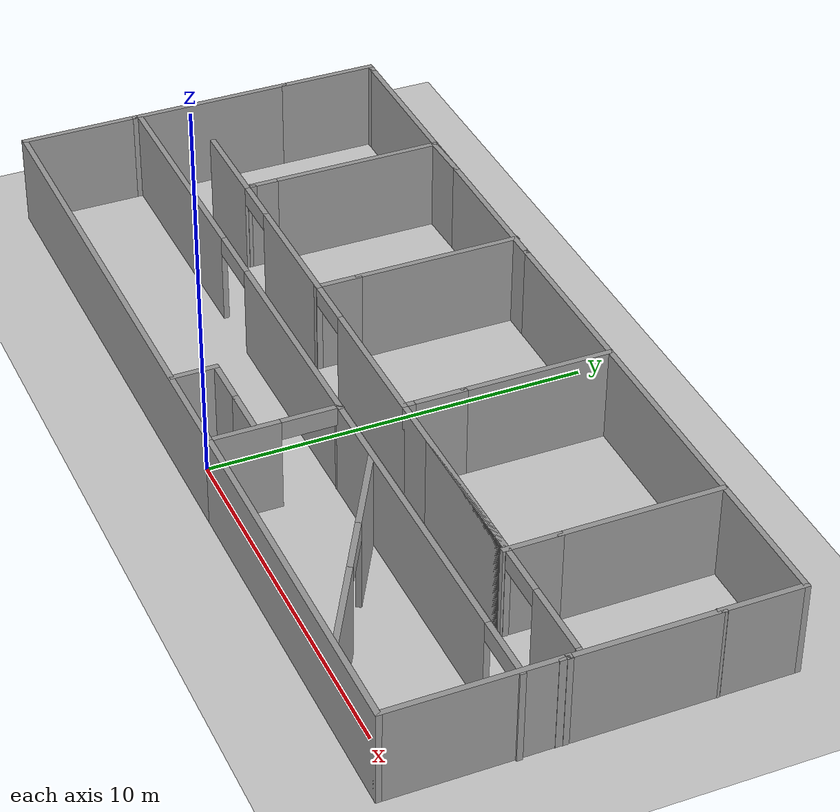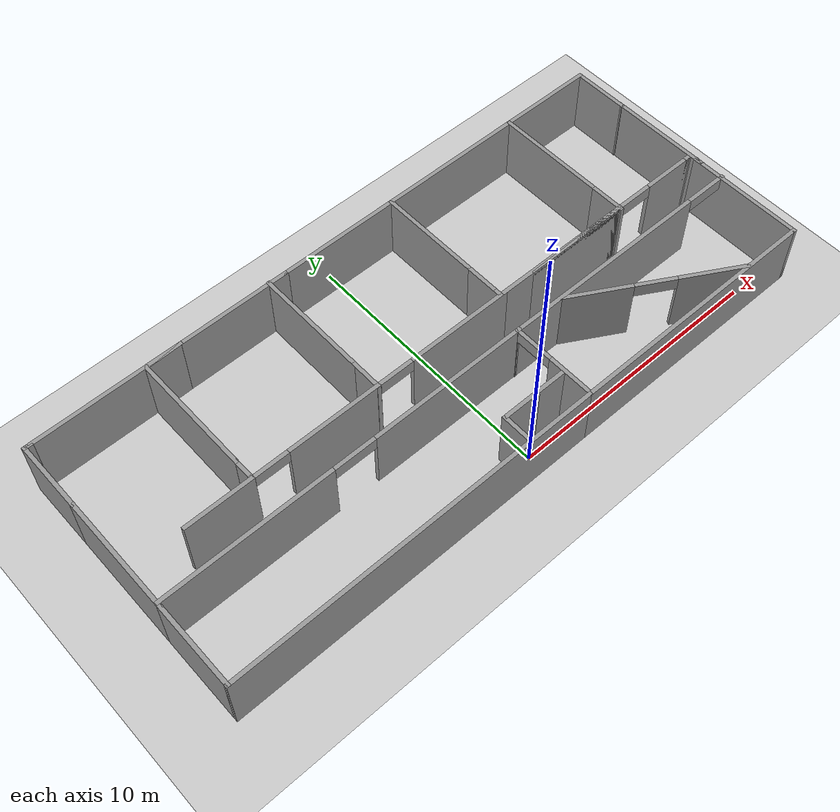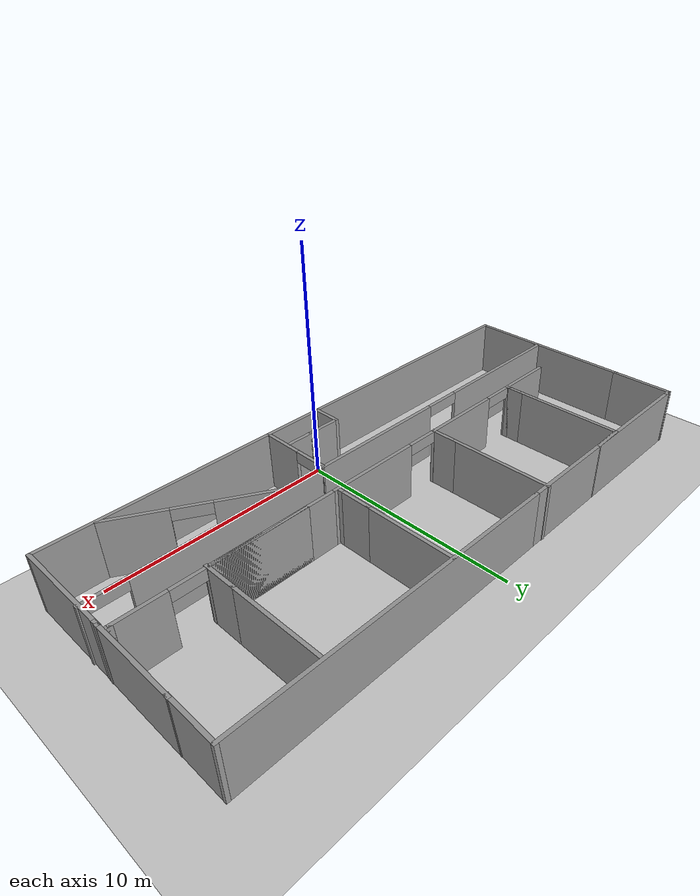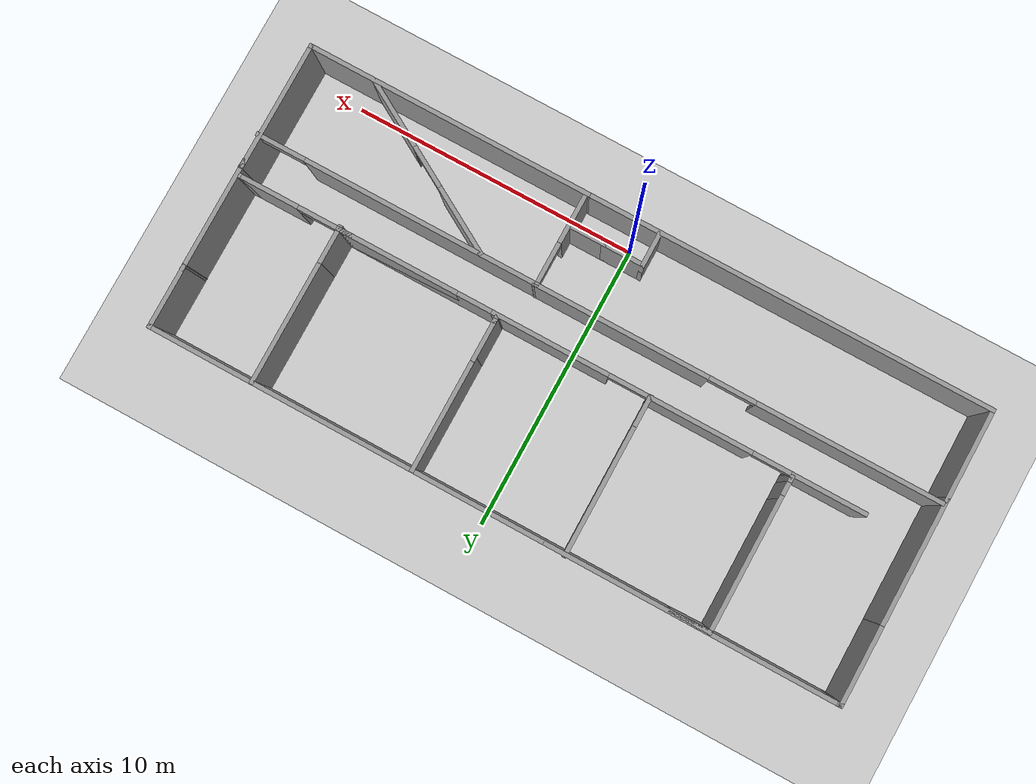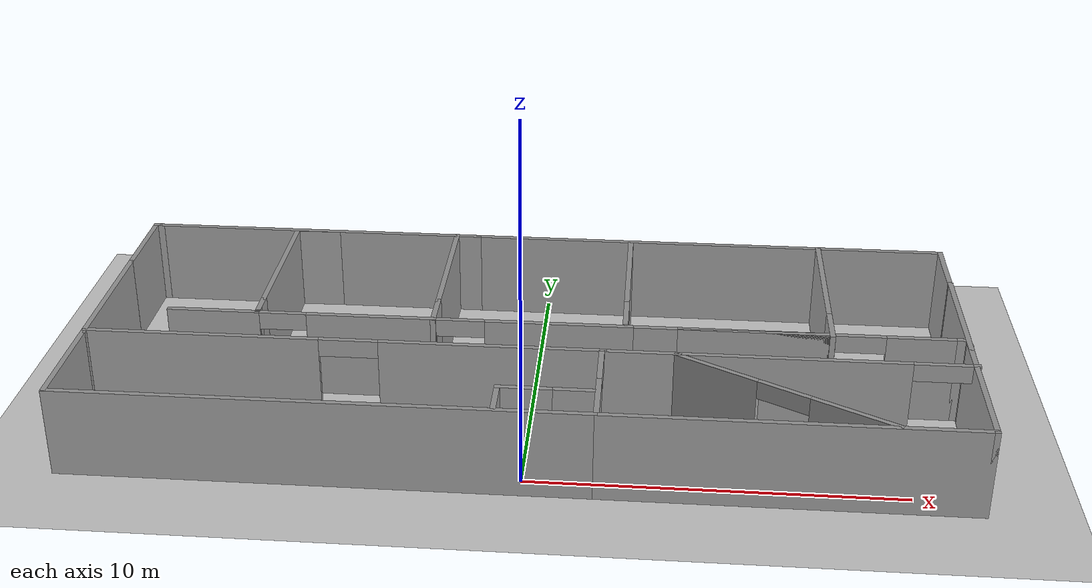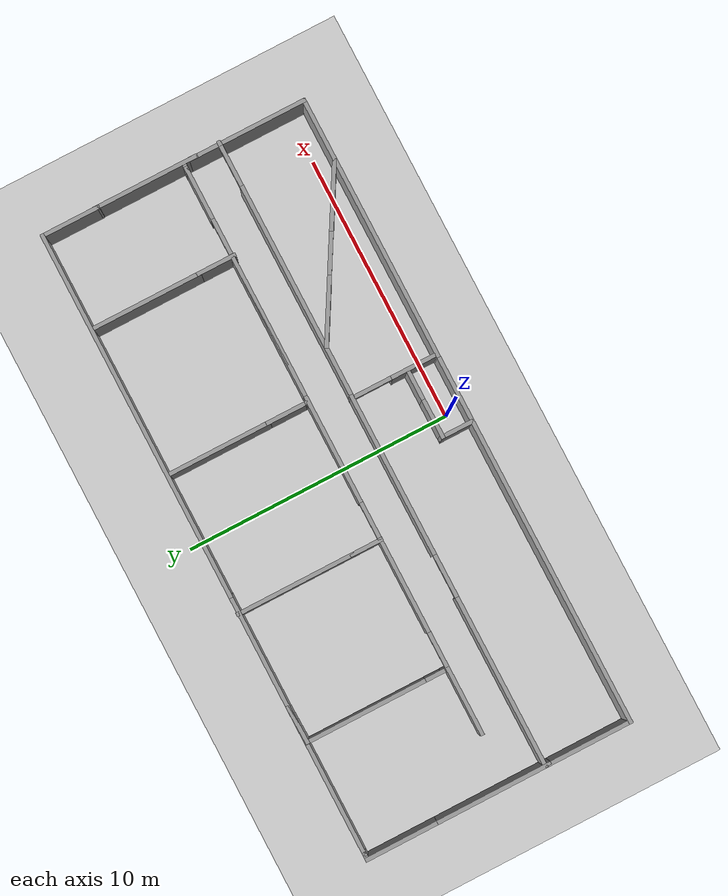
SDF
<sdf version="1.7">
 <world name="default">
  <light name="sun" type="directional">
   <pose>0 0 10 0 -0 0</pose>
   <diffuse>0.8 0.8 0.8 1</diffuse>
   <specular>0.2 0.2 0.2 1</specular>
   <attenuation>
    <range>1000</range>
    <constant>0.9</constant>
    <linear>0.01</linear>
    <quadratic>0.001</quadratic>
   </attenuation>
   <direction>-0.5 0.1 -0.9</direction>
   <spot><inner_angle>0</inner_angle><outer_angle>0</outer_angle><falloff>0</falloff></spot>
  </light>
  <model name="ground_plane">
   <static>1</static>
   <link name="link">
    <collision name="collision">
     <geometry><plane><normal>0 0 1</normal><size>100 100</size></plane></geometry>
     <surface><friction><ode><mu>100</mu><mu2>50</mu2></ode></friction></surface>
    </collision>
    <visual name="visual">
     <cast_shadows>0</cast_shadows>
     <geometry><plane><normal>0 0 1</normal><size>100 100</size></plane></geometry>
     <material>
      <script><uri>file://media/materials/scripts/gazebo.material</uri><name>Gazebo/Grey</name></script>
     </material>
    </visual>
   </link>
  </model>
  <gravity>0 0 -9.8</gravity>
  <magnetic_field>6e-06 2.3e-05 -4.2e-05</magnetic_field>
  <atmosphere type="adiabatic"/>
  <physics type="ode">
   <max_step_size>0.001</max_step_size>
   <real_time_factor>1</real_time_factor>
   <real_time_update_rate>1000</real_time_update_rate>
  </physics>
  <scene><ambient>0.4 0.4 0.4 1</ambient><background>0.7 0.7 0.7 1</background><shadows>1</shadows></scene>
  <audio><device>default</device></audio>
  <spherical_coordinates>
   <surface_model>EARTH_WGS84</surface_model>
   <latitude_deg>0</latitude_deg>
   <longitude_deg>0</longitude_deg>
   <elevation>0</elevation>
   <heading_deg>0</heading_deg>
  </spherical_coordinates>
  <model name="factoty1">
   <pose>-0.195029 4.45497 0 0 -0 0</pose>
   <link name="Wall_15">
    <collision name="Wall_15_Collision">
     <geometry><box><size>1.25 0.15 2.5</size></box></geometry>
     <pose>0 0 1.25 0 -0 0</pose>
    </collision>
    <visual name="Wall_15_Visual">
     <pose>0 0 1.25 0 -0 0</pose>
     <geometry><box><size>1.25 0.15 2.5</size></box></geometry>
     <material>
      <script><uri>file://media/materials/scripts/gazebo.material</uri><name>Gazebo/Grey</name></script>
      <ambient>1 1 1 1</ambient>
     </material>
     <meta><layer>0</layer></meta>
    </visual>
    <pose>-0.464971 -4.44497 0 0 -0 1.5708</pose>
   </link>
   <link name="Wall_18">
    <collision name="Wall_18_Collision">
     <geometry><box><size>1.5 0.15 2.5</size></box></geometry>
     <pose>0 0 1.25 0 -0 0</pose>
    </collision>
    <visual name="Wall_18_Visual">
     <pose>0 0 1.25 0 -0 0</pose>
     <geometry><box><size>1.5 0.15 2.5</size></box></geometry>
     <material>
      <script><uri>file://media/materials/scripts/gazebo.material</uri><name>Gazebo/Grey</name></script>
      <ambient>1 1 1 1</ambient>
     </material>
     <meta><layer>0</layer></meta>
    </visual>
    <pose>0.210029 -3.89497 0 0 -0 0</pose>
   </link>
   <link name="Wall_19">
    <pose>1.43503 -3.89497 0 0 -0 0</pose>
    <visual name="Wall_19_Visual_0">
     <pose>0 0 1.25 0 -0 0</pose>
     <geometry><box><size>1.25 0.15 2.5</size></box></geometry>
     <material>
      <script><uri>file://media/materials/scripts/gazebo.material</uri><name>Gazebo/Grey</name></script>
      <ambient>1 1 1 1</ambient>
     </material>
     <meta><layer>0</layer></meta>
    </visual>
    <collision name="Wall_19_Collision_0">
     <geometry><box><size>1.25 0.15 2.5</size></box></geometry>
     <pose>0 0 1.25 0 -0 0</pose>
    </collision>
    <visual name="Wall_19_Visual_1">
     <pose>0.6225 0 1.25 0 -0 0</pose>
     <geometry><box><size>0.005 0.15 2.5</size></box></geometry>
     <material>
      <script><uri>file://media/materials/scripts/gazebo.material</uri><name>Gazebo/Grey</name></script>
      <ambient>1 1 1 1</ambient>
     </material>
     <meta><layer>0</layer></meta>
    </visual>
    <collision name="Wall_19_Collision_1">
     <geometry><box><size>0.005 0.15 2.5</size></box></geometry>
     <pose>0.6225 0 1.25 0 -0 0</pose>
    </collision>
   </link>
   <link name="Wall_25">
    <pose>-4.88997 -1.78997 0 0 -0 0.000708</pose>
    <visual name="Wall_25_Visual_0">
     <pose>-3.88499 0 1.25 0 -0 0</pose>
     <geometry><box><size>6.51002 0.15 2.5</size></box></geometry>
     <material>
      <script><uri>file://media/materials/scripts/gazebo.material</uri><name>Gazebo/Grey</name></script>
      <ambient>1 1 1 1</ambient>
     </material>
     <meta><layer>0</layer></meta>
    </visual>
    <collision name="Wall_25_Collision_0">
     <geometry><box><size>6.51002 0.15 2.5</size></box></geometry>
     <pose>-3.88499 0 1.25 0 -0 0</pose>
    </collision>
    <visual name="Wall_25_Visual_1">
     <pose>4.06501 0 1.25 0 -0 0</pose>
     <geometry><box><size>6.14999 0.15 2.5</size></box></geometry>
     <material>
      <script><uri>file://media/materials/scripts/gazebo.material</uri><name>Gazebo/Grey</name></script>
      <ambient>1 1 1 1</ambient>
     </material>
     <meta><layer>0</layer></meta>
    </visual>
    <collision name="Wall_25_Collision_1">
     <geometry><box><size>6.14999 0.15 2.5</size></box></geometry>
     <pose>4.06501 0 1.25 0 -0 0</pose>
    </collision>
    <visual name="Wall_25_Visual_2">
     <pose>0.180014 0 2.25 0 -0 0</pose>
     <geometry><box><size>1.61999 0.15 0.5</size></box></geometry>
     <material>
      <script><uri>file://media/materials/scripts/gazebo.material</uri><name>Gazebo/Grey</name></script>
      <ambient>1 1 1 1</ambient>
     </material>
     <meta><layer>0</layer></meta>
    </visual>
    <collision name="Wall_25_Collision_2">
     <geometry><box><size>1.61999 0.15 0.5</size></box></geometry>
     <pose>0.180014 0 2.25 0 -0 0</pose>
    </collision>
   </link>
   <link name="Wall_27">
    <collision name="Wall_27_Collision">
     <geometry><box><size>14.2 0.15 2.5</size></box></geometry>
     <pose>0 0 1.25 0 -0 0</pose>
    </collision>
    <visual name="Wall_27_Visual">
     <pose>0 0 1.25 0 -0 0</pose>
     <geometry><box><size>14.2 0.15 2.5</size></box></geometry>
     <material>
      <script><uri>file://media/materials/scripts/gazebo.material</uri><name>Gazebo/Grey</name></script>
      <ambient>1 1 1 1</ambient>
     </material>
     <meta><layer>0</layer></meta>
    </visual>
    <pose>-4.94997 -5.03997 0 0 -0 0.000712</pose>
   </link>
   <link name="Wall_30">
    <collision name="Wall_30_Collision">
     <geometry><box><size>3.25 0.15 2.5</size></box></geometry>
     <pose>0 0 1.25 0 -0 0</pose>
    </collision>
    <visual name="Wall_30_Visual">
     <pose>0 0 1.25 0 -0 0</pose>
     <geometry><box><size>3.25 0.15 2.5</size></box></geometry>
     <material>
      <script><uri>file://media/materials/scripts/gazebo.material</uri><name>Gazebo/Grey</name></script>
      <ambient>1 1 1 1</ambient>
     </material>
     <meta><layer>0</layer></meta>
    </visual>
    <pose>-11.975 -3.48497 0 0 -0 1.5708</pose>
   </link>
   <link name="Wall_32">
    <collision name="Wall_32_Collision">
     <geometry><box><size>10 0.15 2.5</size></box></geometry>
     <pose>0 0 1.25 0 -0 0</pose>
    </collision>
    <visual name="Wall_32_Visual">
     <pose>0 0 1.25 0 -0 0</pose>
     <geometry><box><size>10 0.15 2.5</size></box></geometry>
     <material>
      <script><uri>file://media/materials/scripts/gazebo.material</uri><name>Gazebo/Grey</name></script>
      <ambient>1 1 1 1</ambient>
     </material>
     <meta><layer>0</layer></meta>
    </visual>
    <pose>7.00003 -5.03497 0 0 -0 0</pose>
   </link>
   <link name="Wall_33">
    <collision name="Wall_33_Collision">
     <geometry><box><size>4.5 0.15 2.5</size></box></geometry>
     <pose>0 0 1.25 0 -0 0</pose>
    </collision>
    <visual name="Wall_33_Visual">
     <pose>0 0 1.25 0 -0 0</pose>
     <geometry><box><size>4.5 0.15 2.5</size></box></geometry>
     <material>
      <script><uri>file://media/materials/scripts/gazebo.material</uri><name>Gazebo/Grey</name></script>
      <ambient>1 1 1 1</ambient>
     </material>
     <meta><layer>0</layer></meta>
    </visual>
    <pose>11.925 -2.85997 0 0 -0 1.5708</pose>
   </link>
   <link name="Wall_34">
    <collision name="Wall_34_Collision">
     <geometry><box><size>0.16 0.15 2.5</size></box></geometry>
     <pose>0 0 1.25 0 -0 0</pose>
    </collision>
    <visual name="Wall_34_Visual">
     <pose>0 0 1.25 0 -0 0</pose>
     <geometry><box><size>0.16 0.15 2.5</size></box></geometry>
     <material>
      <script><uri>file://media/materials/scripts/gazebo.material</uri><name>Gazebo/Grey</name></script>
      <ambient>1 1 1 1</ambient>
     </material>
     <meta><layer>0</layer></meta>
    </visual>
    <pose>11.93 -0.684973 0 0 -0 0</pose>
   </link>
   <link name="Wall_35">
    <collision name="Wall_35_Collision">
     <geometry><box><size>0.16 0.15 2.5</size></box></geometry>
     <pose>0 0 1.25 0 -0 0</pose>
    </collision>
    <visual name="Wall_35_Visual">
     <pose>0 0 1.25 0 -0 0</pose>
     <geometry><box><size>0.16 0.15 2.5</size></box></geometry>
     <material>
      <script><uri>file://media/materials/scripts/gazebo.material</uri><name>Gazebo/Grey</name></script>
      <ambient>1 1 1 1</ambient>
     </material>
     <meta><layer>0</layer></meta>
    </visual>
    <pose>11.94 -0.684973 0 0 -0 0</pose>
   </link>
   <link name="Wall_37">
    <collision name="Wall_37_Collision">
     <geometry><box><size>0.33 0.15 2.5</size></box></geometry>
     <pose>0 0 1.25 0 -0 0</pose>
    </collision>
    <visual name="Wall_37_Visual">
     <pose>0 0 1.25 0 -0 0</pose>
     <geometry><box><size>0.33 0.15 2.5</size></box></geometry>
     <material>
      <script><uri>file://media/materials/scripts/gazebo.material</uri><name>Gazebo/Grey</name></script>
      <ambient>1 1 1 1</ambient>
     </material>
     <meta><layer>0</layer></meta>
    </visual>
    <pose>11.935 -0.774973 0 0 -0 -1.5708</pose>
   </link>
   <link name="Wall_38">
    <collision name="Wall_38_Collision">
     <geometry><box><size>4 0.15 2.5</size></box></geometry>
     <pose>0 0 1.25 0 -0 0</pose>
    </collision>
    <visual name="Wall_38_Visual">
     <pose>0 0 1.25 0 -0 0</pose>
     <geometry><box><size>4 0.15 2.5</size></box></geometry>
     <material>
      <script><uri>file://media/materials/scripts/gazebo.material</uri><name>Gazebo/Grey</name></script>
      <ambient>1 1 1 1</ambient>
     </material>
     <meta><layer>0</layer></meta>
    </visual>
    <pose>11.935 1.06003 0 0 -0 1.5708</pose>
   </link>
   <link name="Wall_40">
    <collision name="Wall_40_Collision">
     <geometry><box><size>0.220711 0.15 2.5</size></box></geometry>
     <pose>0 0 1.25 0 -0 0</pose>
    </collision>
    <visual name="Wall_40_Visual">
     <pose>0 0 1.25 0 -0 0</pose>
     <geometry><box><size>0.220711 0.15 2.5</size></box></geometry>
     <material>
      <script><uri>file://media/materials/scripts/gazebo.material</uri><name>Gazebo/Grey</name></script>
      <ambient>1 1 1 1</ambient>
     </material>
     <meta><layer>0</layer></meta>
    </visual>
    <pose>11.93 2.95003 0 0 -0 -1.71269</pose>
   </link>
   <link name="Wall_41">
    <collision name="Wall_41_Collision">
     <geometry><box><size>2.25 0.15 2.5</size></box></geometry>
     <pose>0 0 1.25 0 -0 0</pose>
    </collision>
    <visual name="Wall_41_Visual">
     <pose>0 0 1.25 0 -0 0</pose>
     <geometry><box><size>2.25 0.15 2.5</size></box></geometry>
     <material>
      <script><uri>file://media/materials/scripts/gazebo.material</uri><name>Gazebo/Grey</name></script>
      <ambient>1 1 1 1</ambient>
     </material>
     <meta><layer>0</layer></meta>
    </visual>
    <pose>11.925 3.96503 0 0 -0 1.5708</pose>
   </link>
   <link name="Wall_42">
    <collision name="Wall_42_Collision">
     <geometry><box><size>14 0.15 2.5</size></box></geometry>
     <pose>0 0 1.25 0 -0 0</pose>
    </collision>
    <visual name="Wall_42_Visual">
     <pose>0 0 1.25 0 -0 0</pose>
     <geometry><box><size>14 0.15 2.5</size></box></geometry>
     <material>
      <script><uri>file://media/materials/scripts/gazebo.material</uri><name>Gazebo/Grey</name></script>
      <ambient>1 1 1 1</ambient>
     </material>
     <meta><layer>0</layer></meta>
    </visual>
    <pose>5.00003 5.01503 0 0 -0 3.14159</pose>
   </link>
   <link name="Wall_44">
    <collision name="Wall_44_Collision">
     <geometry><box><size>10 0.15 2.5</size></box></geometry>
     <pose>0 0 1.25 0 -0 0</pose>
    </collision>
    <visual name="Wall_44_Visual">
     <pose>0 0 1.25 0 -0 0</pose>
     <geometry><box><size>10 0.15 2.5</size></box></geometry>
     <material>
      <script><uri>file://media/materials/scripts/gazebo.material</uri><name>Gazebo/Grey</name></script>
      <ambient>1 1 1 1</ambient>
     </material>
     <meta><layer>0</layer></meta>
    </visual>
    <pose>-6.84997 5.01503 0 0 -0 3.14159</pose>
   </link>
   <link name="Wall_46">
    <collision name="Wall_46_Collision">
     <geometry><box><size>4.5 0.15 2.5</size></box></geometry>
     <pose>0 0 1.25 0 -0 0</pose>
    </collision>
    <visual name="Wall_46_Visual">
     <pose>0 0 1.25 0 -0 0</pose>
     <geometry><box><size>4.5 0.15 2.5</size></box></geometry>
     <material>
      <script><uri>file://media/materials/scripts/gazebo.material</uri><name>Gazebo/Grey</name></script>
      <ambient>1 1 1 1</ambient>
     </material>
     <meta><layer>0</layer></meta>
    </visual>
    <pose>-11.975 0.240027 0 0 -0 1.5708</pose>
   </link>
   <link name="Wall_48">
    <collision name="Wall_48_Collision">
     <geometry><box><size>2.75 0.15 2.5</size></box></geometry>
     <pose>0 0 1.25 0 -0 0</pose>
    </collision>
    <visual name="Wall_48_Visual">
     <pose>0 0 1.25 0 -0 0</pose>
     <geometry><box><size>2.75 0.15 2.5</size></box></geometry>
     <material>
      <script><uri>file://media/materials/scripts/gazebo.material</uri><name>Gazebo/Grey</name></script>
      <ambient>1 1 1 1</ambient>
     </material>
     <meta><layer>0</layer></meta>
    </visual>
    <pose>-11.975 3.71503 0 0 -0 1.5708</pose>
   </link>
   <link name="Wall_49">
    <collision name="Wall_49_Collision">
     <geometry><box><size>0.35 0.15 2.5</size></box></geometry>
     <pose>0 0 1.25 0 -0 0</pose>
    </collision>
    <visual name="Wall_49_Visual">
     <pose>0 0 1.25 0 -0 0</pose>
     <geometry><box><size>0.35 0.15 2.5</size></box></geometry>
     <material>
      <script><uri>file://media/materials/scripts/gazebo.material</uri><name>Gazebo/Grey</name></script>
      <ambient>1 1 1 1</ambient>
     </material>
     <meta><layer>0</layer></meta>
    </visual>
    <pose>-11.875 5.01503 0 0 -0 0</pose>
   </link>
   <link name="Wall_51">
    <collision name="Wall_51_Collision">
     <geometry><box><size>0.20099 0.15 2.5</size></box></geometry>
     <pose>0 0 1.25 0 -0 0</pose>
    </collision>
    <visual name="Wall_51_Visual">
     <pose>0 0 1.25 0 -0 0</pose>
     <geometry><box><size>0.20099 0.15 2.5</size></box></geometry>
     <material>
      <script><uri>file://media/materials/scripts/gazebo.material</uri><name>Gazebo/Grey</name></script>
      <ambient>1 1 1 1</ambient>
     </material>
     <meta><layer>0</layer></meta>
    </visual>
    <pose>2.15003 -1.78997 0 0 -0 -2.9442</pose>
   </link>
   <link name="Wall_52">
    <pose>2.12503 -3.34497 0 0 -0 -1.5708</pose>
    <visual name="Wall_52_Visual_0">
     <pose>-1.565 0 1.25 0 -0 0</pose>
     <geometry><box><size>0.12 0.15 2.5</size></box></geometry>
     <material>
      <script><uri>file://media/materials/scripts/gazebo.material</uri><name>Gazebo/Grey</name></script>
      <ambient>1 1 1 1</ambient>
     </material>
     <meta><layer>0</layer></meta>
    </visual>
    <collision name="Wall_52_Collision_0">
     <geometry><box><size>0.12 0.15 2.5</size></box></geometry>
     <pose>-1.565 0 1.25 0 -0 0</pose>
    </collision>
    <visual name="Wall_52_Visual_1">
     <pose>0.775 0 1.25 0 -0 0</pose>
     <geometry><box><size>1.7 0.15 2.5</size></box></geometry>
     <material>
      <script><uri>file://media/materials/scripts/gazebo.material</uri><name>Gazebo/Grey</name></script>
      <ambient>1 1 1 1</ambient>
     </material>
     <meta><layer>0</layer></meta>
    </visual>
    <collision name="Wall_52_Collision_1">
     <geometry><box><size>1.7 0.15 2.5</size></box></geometry>
     <pose>0.775 0 1.25 0 -0 0</pose>
    </collision>
    <visual name="Wall_52_Visual_2">
     <pose>-0.79 0 2.25 0 -0 0</pose>
     <geometry><box><size>1.43 0.15 0.5</size></box></geometry>
     <material>
      <script><uri>file://media/materials/scripts/gazebo.material</uri><name>Gazebo/Grey</name></script>
      <ambient>1 1 1 1</ambient>
     </material>
     <meta><layer>0</layer></meta>
    </visual>
    <collision name="Wall_52_Collision_2">
     <geometry><box><size>1.43 0.15 0.5</size></box></geometry>
     <pose>-0.79 0 2.25 0 -0 0</pose>
    </collision>
   </link>
   <link name="Wall_54">
    <pose>-3.56997 -0.394973 0 0 -0 0</pose>
    <visual name="Wall_54_Visual_0">
     <pose>-5.195 0 1.25 0 -0 0</pose>
     <geometry><box><size>2.61 0.15 2.5</size></box></geometry>
     <material>
      <script><uri>file://media/materials/scripts/gazebo.material</uri><name>Gazebo/Grey</name></script>
      <ambient>1 1 1 1</ambient>
     </material>
     <meta><layer>0</layer></meta>
    </visual>
    <collision name="Wall_54_Collision_0">
     <geometry><box><size>2.61 0.15 2.5</size></box></geometry>
     <pose>-5.195 0 1.25 0 -0 0</pose>
    </collision>
    <visual name="Wall_54_Visual_1">
     <pose>-0.755 0 1.25 0 -0 0</pose>
     <geometry><box><size>3.63 0.15 2.5</size></box></geometry>
     <material>
      <script><uri>file://media/materials/scripts/gazebo.material</uri><name>Gazebo/Grey</name></script>
      <ambient>1 1 1 1</ambient>
     </material>
     <meta><layer>0</layer></meta>
    </visual>
    <collision name="Wall_54_Collision_1">
     <geometry><box><size>3.63 0.15 2.5</size></box></geometry>
     <pose>-0.755 0 1.25 0 -0 0</pose>
    </collision>
    <visual name="Wall_54_Visual_2">
     <pose>4.455 0 1.25 0 -0 0</pose>
     <geometry><box><size>4.09 0.15 2.5</size></box></geometry>
     <material>
      <script><uri>file://media/materials/scripts/gazebo.material</uri><name>Gazebo/Grey</name></script>
      <ambient>1 1 1 1</ambient>
     </material>
     <meta><layer>0</layer></meta>
    </visual>
    <collision name="Wall_54_Collision_2">
     <geometry><box><size>4.09 0.15 2.5</size></box></geometry>
     <pose>4.455 0 1.25 0 -0 0</pose>
    </collision>
    <visual name="Wall_54_Visual_3">
     <pose>-3.23 0 2.25 0 -0 0</pose>
     <geometry><box><size>1.32 0.15 0.5</size></box></geometry>
     <material>
      <script><uri>file://media/materials/scripts/gazebo.material</uri><name>Gazebo/Grey</name></script>
      <ambient>1 1 1 1</ambient>
     </material>
     <meta><layer>0</layer></meta>
    </visual>
    <collision name="Wall_54_Collision_3">
     <geometry><box><size>1.32 0.15 0.5</size></box></geometry>
     <pose>-3.23 0 2.25 0 -0 0</pose>
    </collision>
    <visual name="Wall_54_Visual_4">
     <pose>1.735 0 2.25 0 -0 0</pose>
     <geometry><box><size>1.35 0.15 0.5</size></box></geometry>
     <material>
      <script><uri>file://media/materials/scripts/gazebo.material</uri><name>Gazebo/Grey</name></script>
      <ambient>1 1 1 1</ambient>
     </material>
     <meta><layer>0</layer></meta>
    </visual>
    <collision name="Wall_54_Collision_4">
     <geometry><box><size>1.35 0.15 0.5</size></box></geometry>
     <pose>1.735 0 2.25 0 -0 0</pose>
    </collision>
   </link>
   <link name="Wall_56">
    <pose>7.28003 -0.394973 0 0 -0 0</pose>
    <visual name="Wall_56_Visual_0">
     <pose>-1.69 0 1.25 0 -0 0</pose>
     <geometry><box><size>5.62 0.15 2.5</size></box></geometry>
     <material>
      <script><uri>file://media/materials/scripts/gazebo.material</uri><name>Gazebo/Grey</name></script>
      <ambient>1 1 1 1</ambient>
     </material>
     <meta><layer>0</layer></meta>
    </visual>
    <collision name="Wall_56_Collision_0">
     <geometry><box><size>5.62 0.15 2.5</size></box></geometry>
     <pose>-1.69 0 1.25 0 -0 0</pose>
    </collision>
    <visual name="Wall_56_Visual_1">
     <pose>-1.015 0 1.25 0 -0 0</pose>
     <geometry><box><size>4.27 0.15 2.5</size></box></geometry>
     <material>
      <script><uri>file://media/materials/scripts/gazebo.material</uri><name>Gazebo/Grey</name></script>
      <ambient>1 1 1 1</ambient>
     </material>
     <meta><layer>0</layer></meta>
    </visual>
    <collision name="Wall_56_Collision_1">
     <geometry><box><size>4.27 0.15 2.5</size></box></geometry>
     <pose>-1.015 0 1.25 0 -0 0</pose>
    </collision>
    <visual name="Wall_56_Visual_2">
     <pose>3.49 0 1.25 0 -0 0</pose>
     <geometry><box><size>2.02 0.15 2.5</size></box></geometry>
     <material>
      <script><uri>file://media/materials/scripts/gazebo.material</uri><name>Gazebo/Grey</name></script>
      <ambient>1 1 1 1</ambient>
     </material>
     <meta><layer>0</layer></meta>
    </visual>
    <collision name="Wall_56_Collision_2">
     <geometry><box><size>2.02 0.15 2.5</size></box></geometry>
     <pose>3.49 0 1.25 0 -0 0</pose>
    </collision>
    <visual name="Wall_56_Visual_3">
     <pose>1.8 0 2.25 0 -0 0</pose>
     <geometry><box><size>1.36 0.15 0.5</size></box></geometry>
     <material>
      <script><uri>file://media/materials/scripts/gazebo.material</uri><name>Gazebo/Grey</name></script>
      <ambient>1 1 1 1</ambient>
     </material>
     <meta><layer>0</layer></meta>
    </visual>
    <collision name="Wall_56_Collision_3">
     <geometry><box><size>1.36 0.15 0.5</size></box></geometry>
     <pose>1.8 0 2.25 0 -0 0</pose>
    </collision>
    <visual name="Wall_56_Visual_4">
     <pose>1.8 0 2.25 0 -0 0</pose>
     <geometry><box><size>1.36 0.15 0.5</size></box></geometry>
     <material>
      <script><uri>file://media/materials/scripts/gazebo.material</uri><name>Gazebo/Grey</name></script>
      <ambient>1 1 1 1</ambient>
     </material>
     <meta><layer>0</layer></meta>
    </visual>
    <collision name="Wall_56_Collision_4">
     <geometry><box><size>1.36 0.15 0.5</size></box></geometry>
     <pose>1.8 0 2.25 0 -0 0</pose>
    </collision>
   </link>
   <link name="Wall_58">
    <collision name="Wall_58_Collision">
     <geometry><box><size>0.25 0.15 2.5</size></box></geometry>
     <pose>0 0 1.25 0 -0 0</pose>
    </collision>
    <visual name="Wall_58_Visual">
     <pose>0 0 1.25 0 -0 0</pose>
     <geometry><box><size>0.25 0.15 2.5</size></box></geometry>
     <material>
      <script><uri>file://media/materials/scripts/gazebo.material</uri><name>Gazebo/Grey</name></script>
      <ambient>1 1 1 1</ambient>
     </material>
     <meta><layer>0</layer></meta>
    </visual>
    <pose>11.755 -0.394973 0 0 -0 0</pose>
   </link>
   <link name="Wall_61">
    <collision name="Wall_61_Collision">
     <geometry><box><size>1.47034 0.15 2.5</size></box></geometry>
     <pose>0 0 1.25 0 -0 0</pose>
    </collision>
    <visual name="Wall_61_Visual">
     <pose>0 0 1.25 0 -0 0</pose>
     <geometry><box><size>1.47034 0.15 2.5</size></box></geometry>
     <material>
      <script><uri>file://media/materials/scripts/gazebo.material</uri><name>Gazebo/Grey</name></script>
      <ambient>1 1 1 1</ambient>
     </material>
     <meta><layer>0</layer></meta>
    </visual>
    <pose>-6.85497 5.00003 0 0 -0 -3.11887</pose>
   </link>
   <link name="Wall_62">
    <collision name="Wall_62_Collision">
     <geometry><box><size>4.75004 0.15 2.5</size></box></geometry>
     <pose>0 0 1.25 0 -0 0</pose>
    </collision>
    <visual name="Wall_62_Visual">
     <pose>0 0 1.25 0 -0 0</pose>
     <geometry><box><size>4.75004 0.15 2.5</size></box></geometry>
     <material>
      <script><uri>file://media/materials/scripts/gazebo.material</uri><name>Gazebo/Grey</name></script>
      <ambient>1 1 1 1</ambient>
     </material>
     <meta><layer>0</layer></meta>
    </visual>
    <pose>-7.52497 2.68503 0 0 -0 -1.5708</pose>
   </link>
   <link name="Wall_65">
    <collision name="Wall_65_Collision">
     <geometry><box><size>0.75 0.15 2.5</size></box></geometry>
     <pose>0 0 1.25 0 -0 0</pose>
    </collision>
    <visual name="Wall_65_Visual">
     <pose>0 0 1.25 0 -0 0</pose>
     <geometry><box><size>0.75 0.15 2.5</size></box></geometry>
     <material>
      <script><uri>file://media/materials/scripts/gazebo.material</uri><name>Gazebo/Grey</name></script>
      <ambient>1 1 1 1</ambient>
     </material>
     <meta><layer>0</layer></meta>
    </visual>
    <pose>-7.52497 0.085027 0 0 -0 -1.5708</pose>
   </link>
   <link name="Wall_66">
    <collision name="Wall_66_Collision">
     <geometry><box><size>0.25 0.15 2.5</size></box></geometry>
     <pose>0 0 1.25 0 -0 0</pose>
    </collision>
    <visual name="Wall_66_Visual">
     <pose>0 0 1.25 0 -0 0</pose>
     <geometry><box><size>0.25 0.15 2.5</size></box></geometry>
     <material>
      <script><uri>file://media/materials/scripts/gazebo.material</uri><name>Gazebo/Grey</name></script>
      <ambient>1 1 1 1</ambient>
     </material>
     <meta><layer>0</layer></meta>
    </visual>
    <pose>-7.52497 -0.264973 0 0 -0 -1.5708</pose>
   </link>
   <link name="Wall_68">
    <collision name="Wall_68_Collision">
     <geometry><box><size>4.5 0.15 2.5</size></box></geometry>
     <pose>0 0 1.25 0 -0 0</pose>
    </collision>
    <visual name="Wall_68_Visual">
     <pose>0 0 1.25 0 -0 0</pose>
     <geometry><box><size>4.5 0.15 2.5</size></box></geometry>
     <material>
      <script><uri>file://media/materials/scripts/gazebo.material</uri><name>Gazebo/Grey</name></script>
      <ambient>1 1 1 1</ambient>
     </material>
     <meta><layer>0</layer></meta>
    </visual>
    <pose>-2.59497 2.87003 0 0 -0 -1.5708</pose>
   </link>
   <link name="Wall_69">
    <collision name="Wall_69_Collision">
     <geometry><box><size>1.25 0.15 2.5</size></box></geometry>
     <pose>0 0 1.25 0 -0 0</pose>
    </collision>
    <visual name="Wall_69_Visual">
     <pose>0 0 1.25 0 -0 0</pose>
     <geometry><box><size>1.25 0.15 2.5</size></box></geometry>
     <material>
      <script><uri>file://media/materials/scripts/gazebo.material</uri><name>Gazebo/Grey</name></script>
      <ambient>1 1 1 1</ambient>
     </material>
     <meta><layer>0</layer></meta>
    </visual>
    <pose>-2.59497 0.145027 0 0 -0 -1.5708</pose>
   </link>
   <link name="Wall_71">
    <collision name="Wall_71_Collision">
     <geometry><box><size>4 0.15 2.5</size></box></geometry>
     <pose>0 0 1.25 0 -0 0</pose>
    </collision>
    <visual name="Wall_71_Visual">
     <pose>0 0 1.25 0 -0 0</pose>
     <geometry><box><size>4 0.15 2.5</size></box></geometry>
     <material>
      <script><uri>file://media/materials/scripts/gazebo.material</uri><name>Gazebo/Grey</name></script>
      <ambient>1 1 1 1</ambient>
     </material>
     <meta><layer>0</layer></meta>
    </visual>
    <pose>2.70503 3.08003 0 0 -0 -1.5708</pose>
   </link>
   <link name="Wall_72">
    <collision name="Wall_72_Collision">
     <geometry><box><size>1.5 0.15 2.5</size></box></geometry>
     <pose>0 0 1.25 0 -0 0</pose>
    </collision>
    <visual name="Wall_72_Visual">
     <pose>0 0 1.25 0 -0 0</pose>
     <geometry><box><size>1.5 0.15 2.5</size></box></geometry>
     <material>
      <script><uri>file://media/materials/scripts/gazebo.material</uri><name>Gazebo/Grey</name></script>
      <ambient>1 1 1 1</ambient>
     </material>
     <meta><layer>0</layer></meta>
    </visual>
    <pose>2.70503 0.480027 0 0 -0 -1.5708</pose>
   </link>
   <link name="Wall_75">
    <collision name="Wall_75_Collision">
     <geometry><box><size>0.25 0.15 2.5</size></box></geometry>
     <pose>0 0 1.25 0 -0 0</pose>
    </collision>
    <visual name="Wall_75_Visual">
     <pose>0 0 1.25 0 -0 0</pose>
     <geometry><box><size>0.25 0.15 2.5</size></box></geometry>
     <material>
      <script><uri>file://media/materials/scripts/gazebo.material</uri><name>Gazebo/Grey</name></script>
      <ambient>1 1 1 1</ambient>
     </material>
     <meta><layer>0</layer></meta>
    </visual>
    <pose>2.70503 -0.244973 0 0 -0 -1.5708</pose>
   </link>
   <link name="Wall_78">
    <collision name="Wall_78_Collision">
     <geometry><box><size>4.25 0.15 2.5</size></box></geometry>
     <pose>0 0 1.25 0 -0 0</pose>
    </collision>
    <visual name="Wall_78_Visual">
     <pose>0 0 1.25 0 -0 0</pose>
     <geometry><box><size>4.25 0.15 2.5</size></box></geometry>
     <material>
      <script><uri>file://media/materials/scripts/gazebo.material</uri><name>Gazebo/Grey</name></script>
      <ambient>1 1 1 1</ambient>
     </material>
     <meta><layer>0</layer></meta>
    </visual>
    <pose>8.31503 2.94503 0 0 -0 -1.5708</pose>
   </link>
   <link name="Wall_79">
    <collision name="Wall_79_Collision">
     <geometry><box><size>1.5 0.15 2.5</size></box></geometry>
     <pose>0 0 1.25 0 -0 0</pose>
    </collision>
    <visual name="Wall_79_Visual">
     <pose>0 0 1.25 0 -0 0</pose>
     <geometry><box><size>1.5 0.15 2.5</size></box></geometry>
     <material>
      <script><uri>file://media/materials/scripts/gazebo.material</uri><name>Gazebo/Grey</name></script>
      <ambient>1 1 1 1</ambient>
     </material>
     <meta><layer>0</layer></meta>
    </visual>
    <pose>8.31503 0.220027 0 0 -0 -1.5708</pose>
   </link>
   <link name="Wall_81">
    <pose>7.05003 -1.79497 0 0 -0 0</pose>
    <visual name="Wall_81_Visual_0">
     <pose>-0.87 0 1.25 0 -0 0</pose>
     <geometry><box><size>8.26 0.15 2.5</size></box></geometry>
     <material>
      <script><uri>file://media/materials/scripts/gazebo.material</uri><name>Gazebo/Grey</name></script>
      <ambient>1 1 1 1</ambient>
     </material>
     <meta><layer>0</layer></meta>
    </visual>
    <collision name="Wall_81_Collision_0">
     <geometry><box><size>8.26 0.15 2.5</size></box></geometry>
     <pose>-0.87 0 1.25 0 -0 0</pose>
    </collision>
    <visual name="Wall_81_Visual_1">
     <pose>4.9 0 1.25 0 -0 0</pose>
     <geometry><box><size>0.2 0.15 2.5</size></box></geometry>
     <material>
      <script><uri>file://media/materials/scripts/gazebo.material</uri><name>Gazebo/Grey</name></script>
      <ambient>1 1 1 1</ambient>
     </material>
     <meta><layer>0</layer></meta>
    </visual>
    <collision name="Wall_81_Collision_1">
     <geometry><box><size>0.2 0.15 2.5</size></box></geometry>
     <pose>4.9 0 1.25 0 -0 0</pose>
    </collision>
    <visual name="Wall_81_Visual_2">
     <pose>4.03 0 2.25 0 -0 0</pose>
     <geometry><box><size>1.54 0.15 0.5</size></box></geometry>
     <material>
      <script><uri>file://media/materials/scripts/gazebo.material</uri><name>Gazebo/Grey</name></script>
      <ambient>1 1 1 1</ambient>
     </material>
     <meta><layer>0</layer></meta>
    </visual>
    <collision name="Wall_81_Collision_2">
     <geometry><box><size>1.54 0.15 0.5</size></box></geometry>
     <pose>4.03 0 2.25 0 -0 0</pose>
    </collision>
   </link>
   <link name="Wall_83">
    <pose>6.86466 -3.41247 0 0 -0 -0.523599</pose>
    <visual name="Wall_83_Visual_0">
     <pose>-2.00088 0 1.25 0 -0 0</pose>
     <geometry><box><size>2.49823 0.15 2.5</size></box></geometry>
     <material>
      <script><uri>file://media/materials/scripts/gazebo.material</uri><name>Gazebo/Grey</name></script>
      <ambient>1 1 1 1</ambient>
     </material>
     <meta><layer>0</layer></meta>
    </visual>
    <collision name="Wall_83_Collision_0">
     <geometry><box><size>2.49823 0.15 2.5</size></box></geometry>
     <pose>-2.00088 0 1.25 0 -0 0</pose>
    </collision>
    <visual name="Wall_83_Visual_1">
     <pose>2.00129 0 1.25 0 -0 0</pose>
     <geometry><box><size>2.49741 0.15 2.5</size></box></geometry>
     <material>
      <script><uri>file://media/materials/scripts/gazebo.material</uri><name>Gazebo/Grey</name></script>
      <ambient>1 1 1 1</ambient>
     </material>
     <meta><layer>0</layer></meta>
    </visual>
    <collision name="Wall_83_Collision_1">
     <geometry><box><size>2.49741 0.15 2.5</size></box></geometry>
     <pose>2.00129 0 1.25 0 -0 0</pose>
    </collision>
    <visual name="Wall_83_Visual_2">
     <pose>0.00041 0 2.25 0 -0 0</pose>
     <geometry><box><size>1.50435 0.15 0.5</size></box></geometry>
     <material>
      <script><uri>file://media/materials/scripts/gazebo.material</uri><name>Gazebo/Grey</name></script>
      <ambient>1 1 1 1</ambient>
     </material>
     <meta><layer>0</layer></meta>
    </visual>
    <collision name="Wall_83_Collision_2">
     <geometry><box><size>1.50435 0.15 0.5</size></box></geometry>
     <pose>0.00041 0 2.25 0 -0 0</pose>
    </collision>
   </link>
   <static>1</static>
  </model>
 </world>
</sdf>
